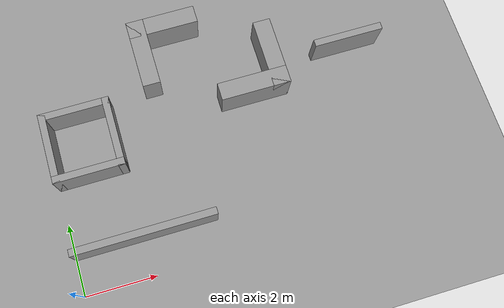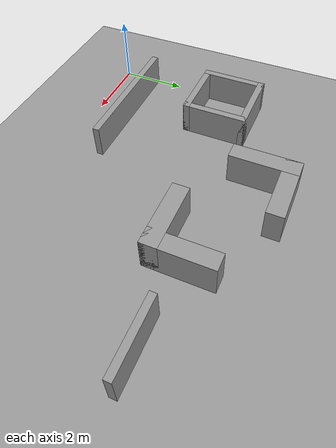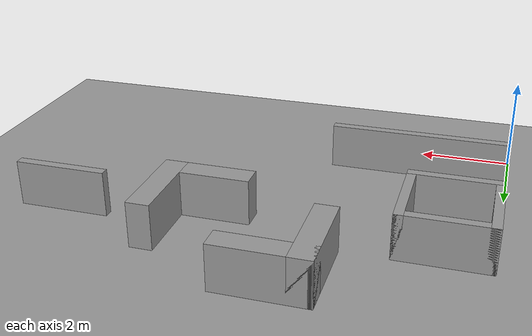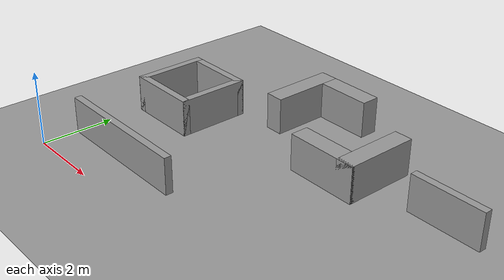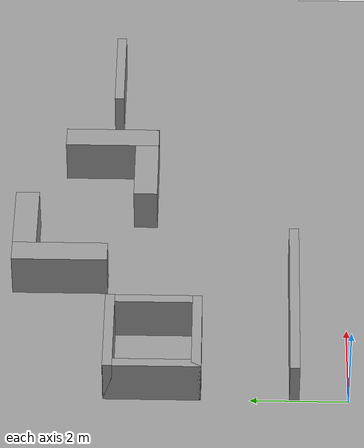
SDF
<sdf version="1.4">
 <world name="default">
  <model name="unit_box_1">
   <static>true</static>
   <pose>3.25 6 0.5 0 -0 0</pose>
   <link name="link">
    <inertial>
     <mass>1</mass>
     <inertia>
      <ixx>0.166667</ixx>
      <ixy>0</ixy>
      <ixz>0</ixz>
      <iyy>0.166667</iyy>
      <iyz>0</iyz>
      <izz>0.166667</izz>
     </inertia>
    </inertial>
    <collision name="collision"><geometry><box><size>0.5 2 1</size></box></geometry></collision>
    <visual name="visual">
     <geometry><box><size>0.5 2 1</size></box></geometry>
     <material>
      <script><name>Gazebo/Grey</name><uri>file://media/materials/scripts/gazebo.material</uri></script>
     </material>
    </visual>
   </link>
  </model>
  <model name="unit_box_2">
   <pose>4 6.75 0.5 0 -0 0</pose>
   <static>true</static>
   <link name="link">
    <inertial>
     <mass>1</mass>
     <inertia>
      <ixx>0.166667</ixx>
      <ixy>0</ixy>
      <ixz>0</ixz>
      <iyy>0.166667</iyy>
      <iyz>0</iyz>
      <izz>0.166667</izz>
     </inertia>
    </inertial>
    <collision name="collision"><geometry><box><size>2 0.5 1</size></box></geometry></collision>
    <visual name="visual">
     <geometry><box><size>2 0.5 1</size></box></geometry>
     <material>
      <script><name>Gazebo/Grey</name><uri>file://media/materials/scripts/gazebo.material</uri></script>
     </material>
    </visual>
   </link>
  </model>
  <model name="unit_box_3">
   <static>true</static>
   <pose>6 4.25 0.5 0 -0 0</pose>
   <link name="link">
    <inertial>
     <mass>1</mass>
     <inertia>
      <ixx>0.166667</ixx>
      <ixy>0</ixy>
      <ixz>0</ixz>
      <iyy>0.166667</iyy>
      <iyz>0</iyz>
      <izz>0.166667</izz>
     </inertia>
    </inertial>
    <collision name="collision"><geometry><box><size>2 0.5 1</size></box></geometry></collision>
    <visual name="visual">
     <geometry><box><size>2 0.5 1</size></box></geometry>
     <material>
      <script><name>Gazebo/Grey</name><uri>file://media/materials/scripts/gazebo.material</uri></script>
     </material>
    </visual>
   </link>
  </model>
  <model name="unit_box_4">
   <static>true</static>
   <pose>6.75 5 0.5 0 -0 0</pose>
   <link name="link">
    <inertial>
     <mass>1</mass>
     <inertia>
      <ixx>0.166667</ixx>
      <ixy>0</ixy>
      <ixz>0</ixz>
      <iyy>0.166667</iyy>
      <iyz>0</iyz>
      <izz>0.166667</izz>
     </inertia>
    </inertial>
    <collision name="collision"><geometry><box><size>0.5 2 1</size></box></geometry></collision>
    <visual name="visual">
     <geometry><box><size>0.5 2 1</size></box></geometry>
     <material>
      <script><name>Gazebo/Grey</name><uri>file://media/materials/scripts/gazebo.material</uri></script>
     </material>
    </visual>
   </link>
  </model>
  <model name="unit_box_5">
   <static>true</static>
   <pose>0.1 4 0.5 0 -0 0</pose>
   <link name="link">
    <inertial>
     <mass>1</mass>
     <inertia>
      <ixx>0.166667</ixx>
      <ixy>0</ixy>
      <ixz>0</ixz>
      <iyy>0.166667</iyy>
      <iyz>0</iyz>
      <izz>0.166667</izz>
     </inertia>
    </inertial>
    <collision name="collision"><geometry><box><size>0.2 2 1</size></box></geometry></collision>
    <visual name="visual">
     <geometry><box><size>0.2 2 1</size></box></geometry>
     <material>
      <script><name>Gazebo/Grey</name><uri>file://media/materials/scripts/gazebo.material</uri></script>
     </material>
    </visual>
   </link>
  </model>
  <model name="unit_box_6">
   <static>true</static>
   <pose>1.9 4 0.5 0 -0 0</pose>
   <link name="link">
    <inertial>
     <mass>1</mass>
     <inertia>
      <ixx>0.166667</ixx>
      <ixy>0</ixy>
      <ixz>0</ixz>
      <iyy>0.166667</iyy>
      <iyz>0</iyz>
      <izz>0.166667</izz>
     </inertia>
    </inertial>
    <collision name="collision"><geometry><box><size>0.2 2 1</size></box></geometry></collision>
    <visual name="visual">
     <geometry><box><size>0.2 2 1</size></box></geometry>
     <material>
      <script><name>Gazebo/Grey</name><uri>file://media/materials/scripts/gazebo.material</uri></script>
     </material>
    </visual>
   </link>
  </model>
  <model name="unit_box_7">
   <pose>1 3.1 0.5 0 -0 0</pose>
   <static>true</static>
   <link name="link">
    <inertial>
     <mass>1</mass>
     <inertia>
      <ixx>0.166667</ixx>
      <ixy>0</ixy>
      <ixz>0</ixz>
      <iyy>0.166667</iyy>
      <iyz>0</iyz>
      <izz>0.166667</izz>
     </inertia>
    </inertial>
    <collision name="collision"><geometry><box><size>2 0.2 1</size></box></geometry></collision>
    <visual name="visual">
     <geometry><box><size>2 0.2 1</size></box></geometry>
     <material>
      <script><name>Gazebo/Grey</name><uri>file://media/materials/scripts/gazebo.material</uri></script>
     </material>
    </visual>
   </link>
  </model>
  <model name="unit_box_8">
   <static>true</static>
   <pose>1 4.9 0.5 0 -0 0</pose>
   <link name="link">
    <inertial>
     <mass>1</mass>
     <inertia>
      <ixx>0.166667</ixx>
      <ixy>0</ixy>
      <ixz>0</ixz>
      <iyy>0.166667</iyy>
      <iyz>0</iyz>
      <izz>0.166667</izz>
     </inertia>
    </inertial>
    <collision name="collision"><geometry><box><size>2 0.2 1</size></box></geometry></collision>
    <visual name="visual">
     <geometry><box><size>2 0.2 1</size></box></geometry>
     <material>
      <script><name>Gazebo/Grey</name><uri>file://media/materials/scripts/gazebo.material</uri></script>
     </material>
    </visual>
   </link>
  </model>
  <model name="unit_box_9">
   <static>true</static>
   <pose>9 4.9 0.5 0 -0 0</pose>
   <link name="link">
    <inertial>
     <mass>1</mass>
     <inertia>
      <ixx>0.166667</ixx>
      <ixy>0</ixy>
      <ixz>0</ixz>
      <iyy>0.166667</iyy>
      <iyz>0</iyz>
      <izz>0.166667</izz>
     </inertia>
    </inertial>
    <collision name="collision"><geometry><box><size>2 0.2 1</size></box></geometry></collision>
    <visual name="visual">
     <geometry><box><size>2 0.2 1</size></box></geometry>
     <material>
      <script><name>Gazebo/Grey</name><uri>file://media/materials/scripts/gazebo.material</uri></script>
     </material>
    </visual>
   </link>
  </model>
  <model name="unit_box_10">
   <static>true</static>
   <pose>2 1.1 0.5 0 -0 0</pose>
   <link name="link">
    <inertial>
     <mass>1</mass>
     <inertia>
      <ixx>0.166667</ixx>
      <ixy>0</ixy>
      <ixz>0</ixz>
      <iyy>0.166667</iyy>
      <iyz>0</iyz>
      <izz>0.166667</izz>
     </inertia>
    </inertial>
    <collision name="collision"><geometry><box><size>4 0.2 1</size></box></geometry></collision>
    <visual name="visual">
     <geometry><box><size>4 0.2 1</size></box></geometry>
     <material>
      <script><name>Gazebo/Grey</name><uri>file://media/materials/scripts/gazebo.material</uri></script>
     </material>
    </visual>
   </link>
  </model>
  <light name="sun" type="directional">
   <pose>0 0 10 0 -0 0</pose>
   <diffuse>0.8 0.8 0.8 1</diffuse>
   <specular>0.2 0.2 0.2 1</specular>
   <attenuation>
    <range>1000</range>
    <constant>0.9</constant>
    <linear>0.01</linear>
    <quadratic>0.001</quadratic>
   </attenuation>
   <direction>0.5 0.1 -0.9</direction>
  </light>
  <scene><ambient>0.4 0.4 0.4 1</ambient><background>0.7 0.7 0.7 1</background><shadows>1</shadows></scene>
  <physics type="ode">
   <max_step_size>0.01</max_step_size>
   <real_time_factor>1</real_time_factor>
   <real_time_update_rate>100</real_time_update_rate>
   <gravity>0 0 -9.8</gravity>
  </physics>
  <model name="ground_plane_0">
   <static>1</static>
   <link name="link">
    <collision name="collision">
     <geometry><plane><normal>0 0 1</normal><size>100 100</size></plane></geometry>
     <surface><friction><ode><mu>100</mu><mu2>50</mu2></ode></friction></surface>
    </collision>
    <visual name="visual">
     <cast_shadows>0</cast_shadows>
     <geometry><plane><normal>0 0 1</normal><size>100 100</size></plane></geometry>
     <material>
      <script><uri>file://media/materials/scripts/gazebo.material</uri><name>Gazebo/Grey</name></script>
     </material>
    </visual>
    <velocity_decay><linear>0</linear><angular>0</angular></velocity_decay>
   </link>
   <pose>0.497681 0 0 0 -0 0</pose>
  </model>
 </world>
</sdf>
